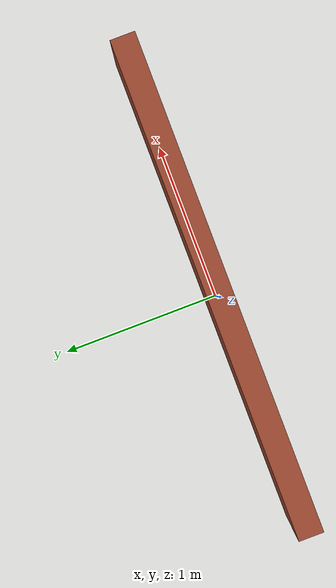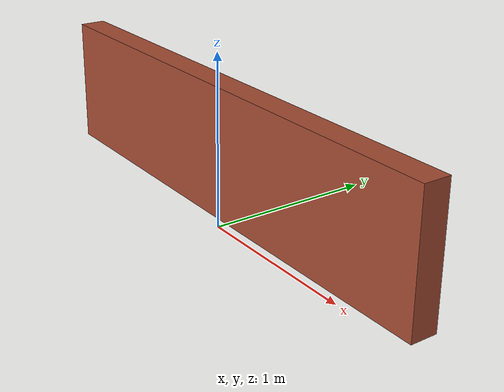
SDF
<?xml version='1.0'?>
<sdf version='1.7'>
  <model name='wall_brick0'>
    <link name='link'>
      <inertial>
        <mass>1000</mass>
        <inertia>
      	  <ixx> 48.75 </ixx>
      	  <ixy> 0.0 </ixy>
      	  <ixz> 0.0 </ixz>
      	  <iyy> 796.875 </iyy>
      	  <iyz> 0.0 </iyz>
      	  <izz> 751.875 </izz>
        </inertia>
        <pose>0 0 0.375 0 0 0</pose>
      </inertial>
      <self_collide>0</self_collide>
      <enable_wind>0</enable_wind>
      <kinematic>0</kinematic>
      <pose>0 0 0.1 0 -0 0</pose>
      <gravity>1</gravity>
      <visual name='visual'>
        <geometry>
          <mesh>
            <uri>file://../config/meshes/WallBrick0/WallBrick0.dae</uri>
          </mesh>
        </geometry>
        <material>
          <ambient>1.0 1.0 1.0 1</ambient>
          <diffuse>1.0 1.0 1.0 1</diffuse>
          <specular>0 0 0 1</specular>
          <emissive>0 0 0 1</emissive>
          <shader type='pixel'>
            <normal_map>__default__</normal_map>
          </shader>
          <script>
            <name>Gazebo/Bricks</name>
            <uri>file://media/materials/scripts/gazebo.material</uri>
          </script>
        </material>
        <pose>0 0 0 0 -0 0</pose>
        <transparency>0</transparency>
        <cast_shadows>1</cast_shadows>
      </visual>
      <collision name='collision'>
        <laser_retro>0</laser_retro>
        <max_contacts>100</max_contacts>
        <pose>0 0 0 0 -0 0</pose>
        <geometry>
          <mesh>
            <uri>/home/alessio/alessio_ws/src/world_generator/data/../config/meshes/WallBrick0/WallBrick0.dae</uri>
            <scale>1 1 1</scale>
          </mesh>
        </geometry>
        <surface>
          <friction>
            <ode>
              <mu>1</mu>
              <mu2>1</mu2>
              <fdir1>0 0 0</fdir1>
              <slip1>0</slip1>
              <slip2>0</slip2>
            </ode>
            <torsional>
              <coefficient>1</coefficient>
              <patch_radius>0</patch_radius>
              <surface_radius>0</surface_radius>
              <use_patch_radius>1</use_patch_radius>
              <ode>
                <slip>0</slip>
              </ode>
            </torsional>
          </friction>
          <bounce>
            <restitution_coefficient>0</restitution_coefficient>
            <threshold>1e+06</threshold>
          </bounce>
          <contact>
            <collide_without_contact>0</collide_without_contact>
            <collide_without_contact_bitmask>1</collide_without_contact_bitmask>
            <collide_bitmask>1</collide_bitmask>
            <ode>
              <soft_cfm>0</soft_cfm>
              <soft_erp>0.2</soft_erp>
              <kp>1e+13</kp>
              <kd>1</kd>
              <max_vel>0.01</max_vel>
              <min_depth>0</min_depth>
            </ode>
            <bullet>
              <split_impulse>1</split_impulse>
              <split_impulse_penetration_threshold>-0.01</split_impulse_penetration_threshold>
              <soft_cfm>0</soft_cfm>
              <soft_erp>0.2</soft_erp>
              <kp>1e+13</kp>
              <kd>1</kd>
            </bullet>
          </contact>
        </surface>
      </collision>
    </link>
    <static>0</static>
    <allow_auto_disable>1</allow_auto_disable>
  </model>
</sdf>
